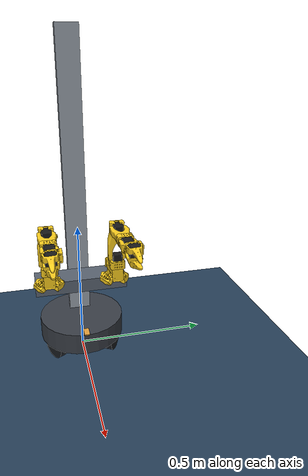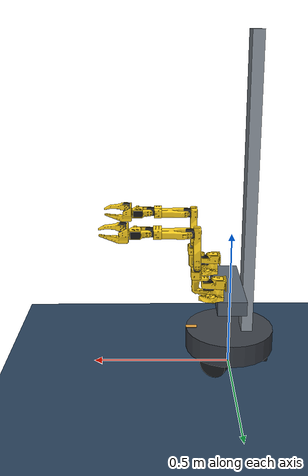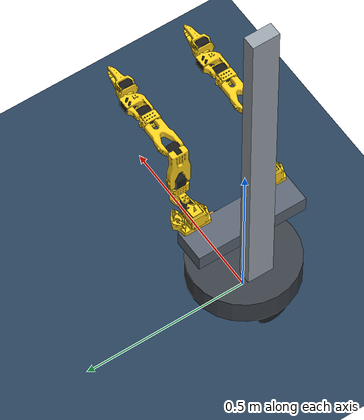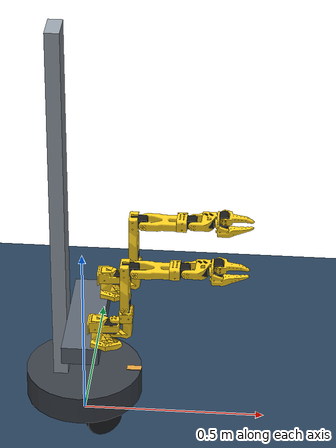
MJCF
<mujoco model="alohamini_twin">
  <compiler angle="radian" meshdir="../arms/so101/assets/"/>

  <option integrator="implicitfast"/>

  <default>
    <default class="left_main">
      <default class="left_so101_new_calib">
        <joint armature="0.005" damping="1" frictionloss="0.1"/>
        <general biastype="affine" gainprm="50" biasprm="0 -50"/>
        <default class="left_visual">
          <geom type="mesh" contype="0" conaffinity="0" group="2"/>
        </default>
        <default class="left_collision">
          <geom group="3"/>
        </default>
      </default>
      <default class="left_sts3215">
        <joint armature="0.028" damping="0.6" frictionloss="0.052"/>
        <geom contype="0" conaffinity="0"/>
        <general forcerange="-2.94 2.94" biastype="affine" gainprm="998.22" biasprm="0 -998.22 -2.731"/>
      </default>
      <default class="left_backlash">
        <joint limited="true" range="-0.00872665 0.00872665" armature="0.01" damping="0.01"/>
      </default>
    </default>
    <default class="right_main">
      <default class="right_so101_new_calib">
        <joint armature="0.005" damping="1" frictionloss="0.1"/>
        <general biastype="affine" gainprm="50" biasprm="0 -50"/>
        <default class="right_visual">
          <geom type="mesh" contype="0" conaffinity="0" group="2"/>
        </default>
        <default class="right_collision">
          <geom group="3"/>
        </default>
      </default>
      <default class="right_sts3215">
        <joint armature="0.028" damping="0.6" frictionloss="0.052"/>
        <geom contype="0" conaffinity="0"/>
        <general forcerange="-2.94 2.94" biastype="affine" gainprm="998.22" biasprm="0 -998.22 -2.731"/>
      </default>
      <default class="right_backlash">
        <joint limited="true" range="-0.00872665 0.00872665" armature="0.01" damping="0.01"/>
      </default>
    </default>
  </default>

  <asset>
    <texture type="2d" colorspace="auto" name="grid" builtin="checker" mark="edge" rgb1="0.2 0.3 0.4" rgb2="0.1 0.2 0.3" markrgb="0.8 0.8 0.8" width="300" height="300"/>
    <material name="grid" texture="grid" texuniform="true" texrepeat="5 5" reflectance="0.2"/>
    <material name="left_base_motor_holder_so101_v1_material" rgba="1 0.82 0.12 1"/>
    <material name="left_base_so101_v2_material" rgba="1 0.82 0.12 1"/>
    <material name="left_sts3215_03a_v1_material" rgba="0.1 0.1 0.1 1"/>
    <material name="left_waveshare_mounting_plate_so101_v2_material" rgba="1 0.82 0.12 1"/>
    <material name="left_motor_holder_so101_base_v1_material" rgba="1 0.82 0.12 1"/>
    <material name="left_rotation_pitch_so101_v1_material" rgba="1 0.82 0.12 1"/>
    <material name="left_upper_arm_so101_v1_material" rgba="1 0.82 0.12 1"/>
    <material name="left_under_arm_so101_v1_material" rgba="1 0.82 0.12 1"/>
    <material name="left_motor_holder_so101_wrist_v1_material" rgba="1 0.82 0.12 1"/>
    <material name="left_sts3215_03a_no_horn_v1_material" rgba="0.1 0.1 0.1 1"/>
    <material name="left_wrist_roll_pitch_so101_v2_material" rgba="1 0.82 0.12 1"/>
    <material name="left_wrist_roll_follower_so101_v1_material" rgba="1 0.82 0.12 1"/>
    <material name="left_moving_jaw_so101_v1_material" rgba="1 0.82 0.12 1"/>
    <material name="right_base_motor_holder_so101_v1_material" rgba="1 0.82 0.12 1"/>
    <material name="right_base_so101_v2_material" rgba="1 0.82 0.12 1"/>
    <material name="right_sts3215_03a_v1_material" rgba="0.1 0.1 0.1 1"/>
    <material name="right_waveshare_mounting_plate_so101_v2_material" rgba="1 0.82 0.12 1"/>
    <material name="right_motor_holder_so101_base_v1_material" rgba="1 0.82 0.12 1"/>
    <material name="right_rotation_pitch_so101_v1_material" rgba="1 0.82 0.12 1"/>
    <material name="right_upper_arm_so101_v1_material" rgba="1 0.82 0.12 1"/>
    <material name="right_under_arm_so101_v1_material" rgba="1 0.82 0.12 1"/>
    <material name="right_motor_holder_so101_wrist_v1_material" rgba="1 0.82 0.12 1"/>
    <material name="right_sts3215_03a_no_horn_v1_material" rgba="0.1 0.1 0.1 1"/>
    <material name="right_wrist_roll_pitch_so101_v2_material" rgba="1 0.82 0.12 1"/>
    <material name="right_wrist_roll_follower_so101_v1_material" rgba="1 0.82 0.12 1"/>
    <material name="right_moving_jaw_so101_v1_material" rgba="1 0.82 0.12 1"/>
    <mesh name="left_waveshare_mounting_plate_so101_v2" file="waveshare_mounting_plate_so101_v2.stl"/>
    <mesh name="left_sts3215_03a_v1" file="sts3215_03a_v1.stl"/>
    <mesh name="left_motor_holder_so101_base_v1" file="motor_holder_so101_base_v1.stl"/>
    <mesh name="left_wrist_roll_follower_so101_v1" file="wrist_roll_follower_so101_v1.stl"/>
    <mesh name="left_moving_jaw_so101_v1" file="moving_jaw_so101_v1.stl"/>
    <mesh name="left_base_motor_holder_so101_v1" file="base_motor_holder_so101_v1.stl"/>
    <mesh name="left_upper_arm_so101_v1" file="upper_arm_so101_v1.stl"/>
    <mesh name="left_wrist_roll_pitch_so101_v2" file="wrist_roll_pitch_so101_v2.stl"/>
    <mesh name="left_under_arm_so101_v1" file="under_arm_so101_v1.stl"/>
    <mesh name="left_rotation_pitch_so101_v1" file="rotation_pitch_so101_v1.stl"/>
    <mesh name="left_motor_holder_so101_wrist_v1" file="motor_holder_so101_wrist_v1.stl"/>
    <mesh name="left_sts3215_03a_no_horn_v1" file="sts3215_03a_no_horn_v1.stl"/>
    <mesh name="left_base_so101_v2" file="base_so101_v2.stl"/>
    <mesh name="right_waveshare_mounting_plate_so101_v2" file="waveshare_mounting_plate_so101_v2.stl"/>
    <mesh name="right_sts3215_03a_v1" file="sts3215_03a_v1.stl"/>
    <mesh name="right_motor_holder_so101_base_v1" file="motor_holder_so101_base_v1.stl"/>
    <mesh name="right_wrist_roll_follower_so101_v1" file="wrist_roll_follower_so101_v1.stl"/>
    <mesh name="right_moving_jaw_so101_v1" file="moving_jaw_so101_v1.stl"/>
    <mesh name="right_base_motor_holder_so101_v1" file="base_motor_holder_so101_v1.stl"/>
    <mesh name="right_upper_arm_so101_v1" file="upper_arm_so101_v1.stl"/>
    <mesh name="right_wrist_roll_pitch_so101_v2" file="wrist_roll_pitch_so101_v2.stl"/>
    <mesh name="right_under_arm_so101_v1" file="under_arm_so101_v1.stl"/>
    <mesh name="right_rotation_pitch_so101_v1" file="rotation_pitch_so101_v1.stl"/>
    <mesh name="right_motor_holder_so101_wrist_v1" file="motor_holder_so101_wrist_v1.stl"/>
    <mesh name="right_sts3215_03a_no_horn_v1" file="sts3215_03a_no_horn_v1.stl"/>
    <mesh name="right_base_so101_v2" file="base_so101_v2.stl"/>
  </asset>

  <worldbody>
    <geom name="floor" size="0 0 0.05" type="plane" material="grid"/>
    <light pos="0 0 3.5" dir="0 0 -1" type="directional"/>
    <body name="base_link" pos="0 0 0.1">
      <joint name="base_x" pos="0 0 0" axis="1 0 0" type="slide"/>
      <joint name="base_y" pos="0 0 0" axis="0 1 0" type="slide"/>
      <joint name="base_yaw" pos="0 0 0" axis="0 0 1"/>
      <geom name="chassis" size="0.16 0.04" type="cylinder" contype="0" conaffinity="0" mass="4" rgba="0.227451 0.247059 0.278431 1"/>
      <geom name="front_marker" size="0.02 0.01 0.002" pos="0.14 0 0.04" type="box" contype="0" conaffinity="0" mass="0" rgba="0.909804 0.639216 0.239216 1"/>
      <geom name="column" size="0.02 0.04 0.525" pos="-0.06 0 0.565" type="box" contype="0" conaffinity="0" mass="1.5" rgba="0.603922 0.639216 0.678431 1"/>
      <body name="wheel_left" pos="0.0625 0.108253 -0.05">
        <joint name="wheel_left_spin" pos="0 0 0" axis="0.5 0.866025 0" damping="0.01"/>
        <geom size="0.05 0.015" quat="0.707107 0.612372 -0.353553 0" type="cylinder" contype="0" conaffinity="0" mass="0.2" rgba="0.105882 0.113725 0.129412 1"/>
      </body>
      <body name="wheel_back" pos="-0.125 0 -0.05">
        <joint name="wheel_back_spin" pos="0 0 0" axis="-1 0 0" damping="0.01"/>
        <geom size="0.05 0.015" quat="0.707107 0 0.707107 0" type="cylinder" contype="0" conaffinity="0" mass="0.2" rgba="0.105882 0.113725 0.129412 1"/>
      </body>
      <body name="wheel_right" pos="0.0625 -0.108253 -0.05">
        <joint name="wheel_right_spin" pos="0 0 0" axis="0.5 -0.866025 0" damping="0.01"/>
        <geom size="0.05 0.015" quat="0.707107 -0.612372 -0.353553 0" type="cylinder" contype="0" conaffinity="0" mass="0.2" rgba="0.105882 0.113725 0.129412 1"/>
      </body>
      <body name="vertical_link" pos="0.01 0 0.19" gravcomp="1">
        <joint name="lift" pos="0 0 0" axis="0 0 1" type="slide" limited="true" range="0 0.6" damping="50"/>
        <geom name="carriage" size="0.05 0.17 0.025" type="box" contype="0" conaffinity="0" mass="0.8" rgba="0.356863 0.396078 0.447059 1"/>
        <body name="left_base" childclass="left_so101_new_calib" pos="0.05 0.12 0.025" gravcomp="1">
          <inertial pos="0.0137179 -5.19711e-05 0.0334843" quat="0.420519 0.558762 0.57198 0.428704" mass="0.147" diaginertia="0.000136127 0.000131807 0.000113233"/>
          <geom class="left_visual" pos="-0.00636471 -9.94414e-05 -0.0024" quat="0.5 0.5 0.5 0.5" material="left_base_motor_holder_so101_v1_material" mesh="left_base_motor_holder_so101_v1"/>
          <geom class="left_visual" pos="-0.00636471 -8.97657e-09 -0.0024" quat="0.5 0.5 0.5 0.5" material="left_base_so101_v2_material" mesh="left_base_so101_v2"/>
          <geom class="left_visual" pos="0.0263353 -8.97657e-09 0.0437" quat="1 0 0 0" material="left_sts3215_03a_v1_material" mesh="left_sts3215_03a_v1"/>
          <geom class="left_visual" pos="-0.0309827 -0.000199441 0.0474" quat="0.5 0.5 0.5 0.5" material="left_waveshare_mounting_plate_so101_v2_material" mesh="left_waveshare_mounting_plate_so101_v2"/>
          <site name="left_baseframe" pos="0 0 0" quat="1 0 0 0" group="3"/>
          <body name="left_shoulder" pos="0.0388353 -8.97657e-09 0.0624" quat="0 0 -1 0" gravcomp="1">
            <inertial pos="-0.0307604 -1.66727e-05 -0.0252713" quat="0.999865 0.00149563 0.0097084 0.0132043" mass="0.100006" diaginertia="8.37836e-05 8.10388e-05 2.39552e-05"/>
            <joint name="left_shoulder_pan" class="left_sts3215" pos="0 0 0" axis="0 0 1" range="-1.91986 1.91986"/>
            <geom class="left_visual" pos="-0.0303992 0.000422241 -0.0417" quat="0.5 0.5 0.5 -0.5" material="left_sts3215_03a_v1_material" mesh="left_sts3215_03a_v1"/>
            <geom class="left_collision" pos="-0.0303992 0.000422241 -0.0417" quat="0.5 0.5 0.5 -0.5" type="mesh" material="left_sts3215_03a_v1_material" mesh="left_sts3215_03a_v1"/>
            <geom class="left_visual" pos="-0.0675992 -0.000177759 0.0158499" quat="0.5 0.5 -0.5 0.5" material="left_motor_holder_so101_base_v1_material" mesh="left_motor_holder_so101_base_v1"/>
            <geom class="left_collision" pos="-0.0675992 -0.000177759 0.0158499" quat="0.5 0.5 -0.5 0.5" type="mesh" material="left_motor_holder_so101_base_v1_material" mesh="left_motor_holder_so101_base_v1"/>
            <geom class="left_visual" pos="0.0122008 2.22413e-05 0.0464" quat="0.707107 -0.707107 0 0" material="left_rotation_pitch_so101_v1_material" mesh="left_rotation_pitch_so101_v1"/>
            <geom class="left_collision" pos="0.0122008 2.22413e-05 0.0464" quat="0.707107 -0.707107 0 0" type="mesh" material="left_rotation_pitch_so101_v1_material" mesh="left_rotation_pitch_so101_v1"/>
            <body name="left_upper_arm" pos="-0.0303992 -0.0182778 -0.0542" quat="0.5 -0.5 -0.5 -0.5" gravcomp="1">
              <inertial pos="-0.0898471 -0.00838224 0.0184089" quat="0.453195 0.454063 0.541891 0.542951" mass="0.103" diaginertia="0.000150873 0.000142487 3.72451e-05"/>
              <joint name="left_shoulder_lift" class="left_sts3215" pos="0 0 0" axis="0 0 1" range="-1.74533 1.74533"/>
              <geom class="left_visual" pos="-0.11257 -0.0155 0.0187" quat="0 -0.707107 0.707107 0" material="left_sts3215_03a_v1_material" mesh="left_sts3215_03a_v1"/>
              <geom class="left_collision" pos="-0.11257 -0.0155 0.0187" quat="0 -0.707107 0.707107 0" type="mesh" material="left_sts3215_03a_v1_material" mesh="left_sts3215_03a_v1"/>
              <geom class="left_visual" pos="-0.065085 0.012 0.0182" quat="0 1 0 0" material="left_upper_arm_so101_v1_material" mesh="left_upper_arm_so101_v1"/>
              <geom class="left_collision" pos="-0.065085 0.012 0.0182" quat="0 1 0 0" type="mesh" material="left_upper_arm_so101_v1_material" mesh="left_upper_arm_so101_v1"/>
              <body name="left_lower_arm" pos="-0.11257 -0.028 0" quat="0.707107 0 0 0.707107" gravcomp="1">
                <inertial pos="-0.0980701 0.00324376 0.0182831" quat="0.510729 0.517006 0.487966 0.483477" mass="0.104" diaginertia="0.000160262 0.000145304 2.83125e-05"/>
                <joint name="left_elbow_flex" class="left_sts3215" pos="0 0 0" axis="0 0 1" range="-1.69 1.69"/>
                <geom class="left_visual" pos="-0.0648499 -0.032 0.0182" quat="0 1 0 0" material="left_under_arm_so101_v1_material" mesh="left_under_arm_so101_v1"/>
                <geom class="left_collision" pos="-0.0648499 -0.032 0.0182" quat="0 1 0 0" type="mesh" material="left_under_arm_so101_v1_material" mesh="left_under_arm_so101_v1"/>
                <geom class="left_visual" pos="-0.0648499 -0.032 0.018" quat="0 -1 0 0" material="left_motor_holder_so101_wrist_v1_material" mesh="left_motor_holder_so101_wrist_v1"/>
                <geom class="left_collision" pos="-0.0648499 -0.032 0.018" quat="0 -1 0 0" type="mesh" material="left_motor_holder_so101_wrist_v1_material" mesh="left_motor_holder_so101_wrist_v1"/>
                <geom class="left_visual" pos="-0.1224 0.0052 0.0187" quat="0 0 1 0" material="left_sts3215_03a_v1_material" mesh="left_sts3215_03a_v1"/>
                <geom class="left_collision" pos="-0.1224 0.0052 0.0187" quat="0 0 1 0" type="mesh" material="left_sts3215_03a_v1_material" mesh="left_sts3215_03a_v1"/>
                <body name="left_wrist" pos="-0.1349 0.0052 0" quat="0.707107 0 0 -0.707107" gravcomp="1">
                  <inertial pos="-0.000103312 -0.0386143 0.0281156" quat="0.967143 0.254226 0.00162226 -0.000146307" mass="0.079" diaginertia="3.68265e-05 2.74474e-05 1.89434e-05"/>
                  <joint name="left_wrist_flex" class="left_sts3215" pos="0 0 0" axis="0 0 1" range="-1.65806 1.65806"/>
                  <geom class="left_visual" pos="0 -0.0424 0.0306" quat="0.5 0.5 0.5 -0.5" material="left_sts3215_03a_no_horn_v1_material" mesh="left_sts3215_03a_no_horn_v1"/>
                  <geom class="left_collision" pos="0 -0.0424 0.0306" quat="0.5 0.5 0.5 -0.5" type="mesh" material="left_sts3215_03a_no_horn_v1_material" mesh="left_sts3215_03a_no_horn_v1"/>
                  <geom class="left_visual" pos="0 -0.028 0.0181" quat="0.5 -0.5 -0.5 -0.5" material="left_wrist_roll_pitch_so101_v2_material" mesh="left_wrist_roll_pitch_so101_v2"/>
                  <geom class="left_collision" pos="0 -0.028 0.0181" quat="0.5 -0.5 -0.5 -0.5" type="mesh" material="left_wrist_roll_pitch_so101_v2_material" mesh="left_wrist_roll_pitch_so101_v2"/>
                  <body name="left_gripper" pos="0 -0.0611 0.0181" quat="0.0172091 -0.0172091 0.706897 0.706897" gravcomp="1">
                    <inertial pos="0.000213627 0.000245138 -0.025187" quat="0.600717 0.355993 0.35863 0.61951" mass="0.087" diaginertia="4.33735e-05 3.77229e-05 2.42839e-05"/>
                    <joint name="left_wrist_roll" class="left_sts3215" pos="0 0 0" axis="0 0 1" range="-2.74385 2.84121"/>
                    <geom class="left_visual" pos="0.0077 0.0001 -0.0234" quat="0.707107 -0.707107 0 0" material="left_sts3215_03a_v1_material" mesh="left_sts3215_03a_v1"/>
                    <geom class="left_collision" pos="0.0077 0.0001 -0.0234" quat="0.707107 -0.707107 0 0" type="mesh" material="left_sts3215_03a_v1_material" mesh="left_sts3215_03a_v1"/>
                    <geom class="left_visual" pos="0 -0.000218214 0.000949706" quat="0 1 0 0" material="left_wrist_roll_follower_so101_v1_material" mesh="left_wrist_roll_follower_so101_v1"/>
                    <geom class="left_collision" pos="0 -0.000218214 0.000949706" quat="0 1 0 0" type="mesh" material="left_wrist_roll_follower_so101_v1_material" mesh="left_wrist_roll_follower_so101_v1"/>
                    <site name="left_gripperframe" pos="-0.0079 -0.000218121 -0.0981274" quat="0.707107 0 0.707107 0" group="3"/>
                    <body name="left_moving_jaw_so101_v1" pos="0.0202 0.0188 -0.0234" quat="0.707107 0.707107 -1.85362e-08 1.85362e-08" gravcomp="1">
                      <inertial pos="-0.00157495 -0.0300244 0.0192755" quat="0.695265 0.717965 -0.0245618 -0.0230097" mass="0.012" diaginertia="6.63582e-06 5.29092e-06 1.86523e-06"/>
                      <joint name="left_gripper" class="left_sts3215" pos="0 0 0" axis="0 0 1" range="-0.174533 1.74533"/>
                      <geom class="left_visual" pos="0 0 0.0189" quat="1 0 0 0" material="left_moving_jaw_so101_v1_material" mesh="left_moving_jaw_so101_v1"/>
                      <geom class="left_collision" pos="0 0 0.0189" quat="1 0 0 0" type="mesh" material="left_moving_jaw_so101_v1_material" mesh="left_moving_jaw_so101_v1"/>
                    </body>
                  </body>
                </body>
              </body>
            </body>
          </body>
        </body>
        <body name="right_base" childclass="right_so101_new_calib" pos="0.05 -0.12 0.025" gravcomp="1">
          <inertial pos="0.0137179 -5.19711e-05 0.0334843" quat="0.420519 0.558762 0.57198 0.428704" mass="0.147" diaginertia="0.000136127 0.000131807 0.000113233"/>
          <geom class="right_visual" pos="-0.00636471 -9.94414e-05 -0.0024" quat="0.5 0.5 0.5 0.5" material="right_base_motor_holder_so101_v1_material" mesh="right_base_motor_holder_so101_v1"/>
          <geom class="right_visual" pos="-0.00636471 -8.97657e-09 -0.0024" quat="0.5 0.5 0.5 0.5" material="right_base_so101_v2_material" mesh="right_base_so101_v2"/>
          <geom class="right_visual" pos="0.0263353 -8.97657e-09 0.0437" quat="1 0 0 0" material="right_sts3215_03a_v1_material" mesh="right_sts3215_03a_v1"/>
          <geom class="right_visual" pos="-0.0309827 -0.000199441 0.0474" quat="0.5 0.5 0.5 0.5" material="right_waveshare_mounting_plate_so101_v2_material" mesh="right_waveshare_mounting_plate_so101_v2"/>
          <site name="right_baseframe" pos="0 0 0" quat="1 0 0 0" group="3"/>
          <body name="right_shoulder" pos="0.0388353 -8.97657e-09 0.0624" quat="0 0 -1 0" gravcomp="1">
            <inertial pos="-0.0307604 -1.66727e-05 -0.0252713" quat="0.999865 0.00149563 0.0097084 0.0132043" mass="0.100006" diaginertia="8.37836e-05 8.10388e-05 2.39552e-05"/>
            <joint name="right_shoulder_pan" class="right_sts3215" pos="0 0 0" axis="0 0 1" range="-1.91986 1.91986"/>
            <geom class="right_visual" pos="-0.0303992 0.000422241 -0.0417" quat="0.5 0.5 0.5 -0.5" material="right_sts3215_03a_v1_material" mesh="right_sts3215_03a_v1"/>
            <geom class="right_collision" pos="-0.0303992 0.000422241 -0.0417" quat="0.5 0.5 0.5 -0.5" type="mesh" material="right_sts3215_03a_v1_material" mesh="right_sts3215_03a_v1"/>
            <geom class="right_visual" pos="-0.0675992 -0.000177759 0.0158499" quat="0.5 0.5 -0.5 0.5" material="right_motor_holder_so101_base_v1_material" mesh="right_motor_holder_so101_base_v1"/>
            <geom class="right_collision" pos="-0.0675992 -0.000177759 0.0158499" quat="0.5 0.5 -0.5 0.5" type="mesh" material="right_motor_holder_so101_base_v1_material" mesh="right_motor_holder_so101_base_v1"/>
            <geom class="right_visual" pos="0.0122008 2.22413e-05 0.0464" quat="0.707107 -0.707107 0 0" material="right_rotation_pitch_so101_v1_material" mesh="right_rotation_pitch_so101_v1"/>
            <geom class="right_collision" pos="0.0122008 2.22413e-05 0.0464" quat="0.707107 -0.707107 0 0" type="mesh" material="right_rotation_pitch_so101_v1_material" mesh="right_rotation_pitch_so101_v1"/>
            <body name="right_upper_arm" pos="-0.0303992 -0.0182778 -0.0542" quat="0.5 -0.5 -0.5 -0.5" gravcomp="1">
              <inertial pos="-0.0898471 -0.00838224 0.0184089" quat="0.453195 0.454063 0.541891 0.542951" mass="0.103" diaginertia="0.000150873 0.000142487 3.72451e-05"/>
              <joint name="right_shoulder_lift" class="right_sts3215" pos="0 0 0" axis="0 0 1" range="-1.74533 1.74533"/>
              <geom class="right_visual" pos="-0.11257 -0.0155 0.0187" quat="0 -0.707107 0.707107 0" material="right_sts3215_03a_v1_material" mesh="right_sts3215_03a_v1"/>
              <geom class="right_collision" pos="-0.11257 -0.0155 0.0187" quat="0 -0.707107 0.707107 0" type="mesh" material="right_sts3215_03a_v1_material" mesh="right_sts3215_03a_v1"/>
              <geom class="right_visual" pos="-0.065085 0.012 0.0182" quat="0 1 0 0" material="right_upper_arm_so101_v1_material" mesh="right_upper_arm_so101_v1"/>
              <geom class="right_collision" pos="-0.065085 0.012 0.0182" quat="0 1 0 0" type="mesh" material="right_upper_arm_so101_v1_material" mesh="right_upper_arm_so101_v1"/>
              <body name="right_lower_arm" pos="-0.11257 -0.028 0" quat="0.707107 0 0 0.707107" gravcomp="1">
                <inertial pos="-0.0980701 0.00324376 0.0182831" quat="0.510729 0.517006 0.487966 0.483477" mass="0.104" diaginertia="0.000160262 0.000145304 2.83125e-05"/>
                <joint name="right_elbow_flex" class="right_sts3215" pos="0 0 0" axis="0 0 1" range="-1.69 1.69"/>
                <geom class="right_visual" pos="-0.0648499 -0.032 0.0182" quat="0 1 0 0" material="right_under_arm_so101_v1_material" mesh="right_under_arm_so101_v1"/>
                <geom class="right_collision" pos="-0.0648499 -0.032 0.0182" quat="0 1 0 0" type="mesh" material="right_under_arm_so101_v1_material" mesh="right_under_arm_so101_v1"/>
                <geom class="right_visual" pos="-0.0648499 -0.032 0.018" quat="0 -1 0 0" material="right_motor_holder_so101_wrist_v1_material" mesh="right_motor_holder_so101_wrist_v1"/>
                <geom class="right_collision" pos="-0.0648499 -0.032 0.018" quat="0 -1 0 0" type="mesh" material="right_motor_holder_so101_wrist_v1_material" mesh="right_motor_holder_so101_wrist_v1"/>
                <geom class="right_visual" pos="-0.1224 0.0052 0.0187" quat="0 0 1 0" material="right_sts3215_03a_v1_material" mesh="right_sts3215_03a_v1"/>
                <geom class="right_collision" pos="-0.1224 0.0052 0.0187" quat="0 0 1 0" type="mesh" material="right_sts3215_03a_v1_material" mesh="right_sts3215_03a_v1"/>
                <body name="right_wrist" pos="-0.1349 0.0052 0" quat="0.707107 0 0 -0.707107" gravcomp="1">
                  <inertial pos="-0.000103312 -0.0386143 0.0281156" quat="0.967143 0.254226 0.00162226 -0.000146307" mass="0.079" diaginertia="3.68265e-05 2.74474e-05 1.89434e-05"/>
                  <joint name="right_wrist_flex" class="right_sts3215" pos="0 0 0" axis="0 0 1" range="-1.65806 1.65806"/>
                  <geom class="right_visual" pos="0 -0.0424 0.0306" quat="0.5 0.5 0.5 -0.5" material="right_sts3215_03a_no_horn_v1_material" mesh="right_sts3215_03a_no_horn_v1"/>
                  <geom class="right_collision" pos="0 -0.0424 0.0306" quat="0.5 0.5 0.5 -0.5" type="mesh" material="right_sts3215_03a_no_horn_v1_material" mesh="right_sts3215_03a_no_horn_v1"/>
                  <geom class="right_visual" pos="0 -0.028 0.0181" quat="0.5 -0.5 -0.5 -0.5" material="right_wrist_roll_pitch_so101_v2_material" mesh="right_wrist_roll_pitch_so101_v2"/>
                  <geom class="right_collision" pos="0 -0.028 0.0181" quat="0.5 -0.5 -0.5 -0.5" type="mesh" material="right_wrist_roll_pitch_so101_v2_material" mesh="right_wrist_roll_pitch_so101_v2"/>
                  <body name="right_gripper" pos="0 -0.0611 0.0181" quat="0.0172091 -0.0172091 0.706897 0.706897" gravcomp="1">
                    <inertial pos="0.000213627 0.000245138 -0.025187" quat="0.600717 0.355993 0.35863 0.61951" mass="0.087" diaginertia="4.33735e-05 3.77229e-05 2.42839e-05"/>
                    <joint name="right_wrist_roll" class="right_sts3215" pos="0 0 0" axis="0 0 1" range="-2.74385 2.84121"/>
                    <geom class="right_visual" pos="0.0077 0.0001 -0.0234" quat="0.707107 -0.707107 0 0" material="right_sts3215_03a_v1_material" mesh="right_sts3215_03a_v1"/>
                    <geom class="right_collision" pos="0.0077 0.0001 -0.0234" quat="0.707107 -0.707107 0 0" type="mesh" material="right_sts3215_03a_v1_material" mesh="right_sts3215_03a_v1"/>
                    <geom class="right_visual" pos="0 -0.000218214 0.000949706" quat="0 1 0 0" material="right_wrist_roll_follower_so101_v1_material" mesh="right_wrist_roll_follower_so101_v1"/>
                    <geom class="right_collision" pos="0 -0.000218214 0.000949706" quat="0 1 0 0" type="mesh" material="right_wrist_roll_follower_so101_v1_material" mesh="right_wrist_roll_follower_so101_v1"/>
                    <site name="right_gripperframe" pos="-0.0079 -0.000218121 -0.0981274" quat="0.707107 0 0.707107 0" group="3"/>
                    <body name="right_moving_jaw_so101_v1" pos="0.0202 0.0188 -0.0234" quat="0.707107 0.707107 -1.85362e-08 1.85362e-08" gravcomp="1">
                      <inertial pos="-0.00157495 -0.0300244 0.0192755" quat="0.695265 0.717965 -0.0245618 -0.0230097" mass="0.012" diaginertia="6.63582e-06 5.29092e-06 1.86523e-06"/>
                      <joint name="right_gripper" class="right_sts3215" pos="0 0 0" axis="0 0 1" range="-0.174533 1.74533"/>
                      <geom class="right_visual" pos="0 0 0.0189" quat="1 0 0 0" material="right_moving_jaw_so101_v1_material" mesh="right_moving_jaw_so101_v1"/>
                      <geom class="right_collision" pos="0 0 0.0189" quat="1 0 0 0" type="mesh" material="right_moving_jaw_so101_v1_material" mesh="right_moving_jaw_so101_v1"/>
                    </body>
                  </body>
                </body>
              </body>
            </body>
          </body>
        </body>
      </body>
    </body>
  </worldbody>

  <actuator>
    <general name="left_shoulder_pan" class="left_sts3215" joint="left_shoulder_pan" ctrlrange="-1.91986 1.91986" forcerange="-3.35 3.35"/>
    <general name="left_shoulder_lift" class="left_sts3215" joint="left_shoulder_lift" ctrlrange="-1.74533 1.74533" forcerange="-3.35 3.35"/>
    <general name="left_elbow_flex" class="left_sts3215" joint="left_elbow_flex" ctrlrange="-1.69 1.69" forcerange="-3.35 3.35"/>
    <general name="left_wrist_flex" class="left_sts3215" joint="left_wrist_flex" ctrlrange="-1.65806 1.65806" forcerange="-3.35 3.35"/>
    <general name="left_wrist_roll" class="left_sts3215" joint="left_wrist_roll" ctrlrange="-2.74385 2.84121" forcerange="-3.35 3.35"/>
    <general name="left_gripper" class="left_sts3215" joint="left_gripper" ctrlrange="-0.17453 1.74533" forcerange="-3.35 3.35"/>
    <general name="right_shoulder_pan" class="right_sts3215" joint="right_shoulder_pan" ctrlrange="-1.91986 1.91986" forcerange="-3.35 3.35"/>
    <general name="right_shoulder_lift" class="right_sts3215" joint="right_shoulder_lift" ctrlrange="-1.74533 1.74533" forcerange="-3.35 3.35"/>
    <general name="right_elbow_flex" class="right_sts3215" joint="right_elbow_flex" ctrlrange="-1.69 1.69" forcerange="-3.35 3.35"/>
    <general name="right_wrist_flex" class="right_sts3215" joint="right_wrist_flex" ctrlrange="-1.65806 1.65806" forcerange="-3.35 3.35"/>
    <general name="right_wrist_roll" class="right_sts3215" joint="right_wrist_roll" ctrlrange="-2.74385 2.84121" forcerange="-3.35 3.35"/>
    <general name="right_gripper" class="right_sts3215" joint="right_gripper" ctrlrange="-0.17453 1.74533" forcerange="-3.35 3.35"/>
    <general name="base_x_vel" joint="base_x" biastype="affine" gainprm="500" biasprm="0 0 -500"/>
    <general name="base_y_vel" joint="base_y" biastype="affine" gainprm="500" biasprm="0 0 -500"/>
    <general name="base_yaw_vel" joint="base_yaw" biastype="affine" gainprm="500" biasprm="0 0 -500"/>
    <general name="lift_pos" joint="lift" ctrllimited="true" ctrlrange="0 0.6" biastype="affine" gainprm="20000" biasprm="0 -20000 -800"/>
  </actuator>
</mujoco>
